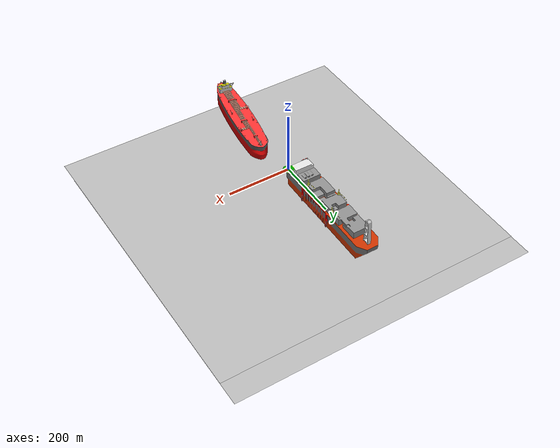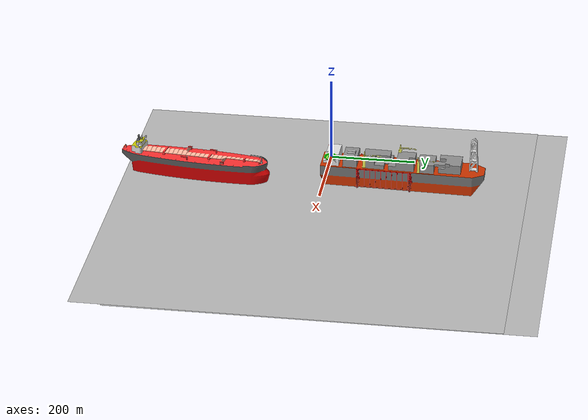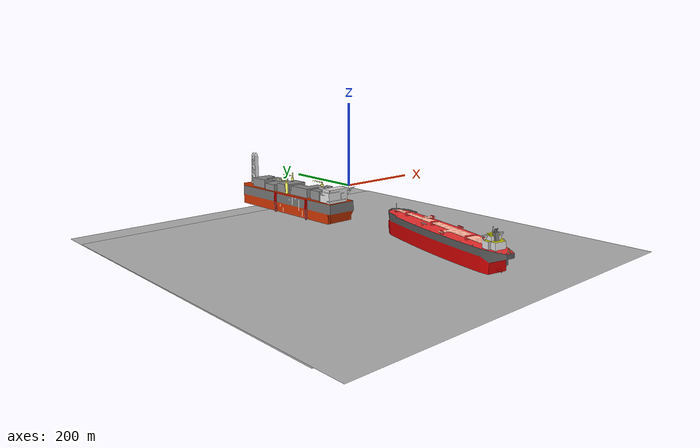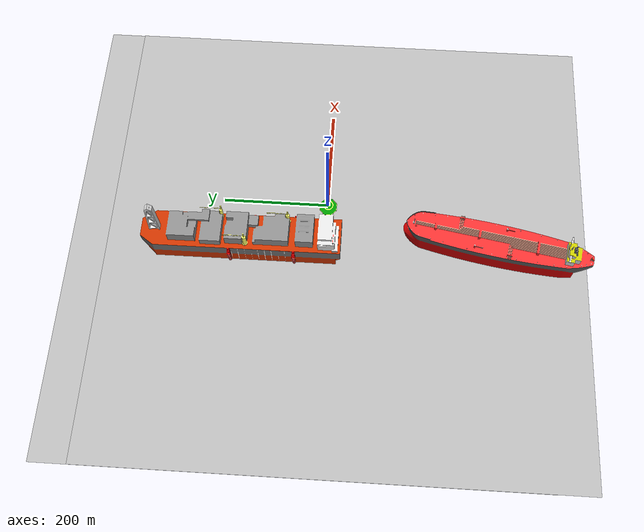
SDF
<sdf version="1.5">
 <world name="default">
  <include><uri>model://sun</uri></include>
  <model name="Placa QR">
   <static>true</static>
   <link name="link">
    <collision name="placaqr">
     <pose>-4.342632 -300.583344 -36.036732 1.13447 0.026008 1.558639</pose>
     <geometry><mesh><uri>model://placaqr/meshes/placaQR.dae</uri></mesh></geometry>
    </collision>
    <visual name="placaqr2">
     <pose>-4.342632 -300.583344 -36.036732 1.13447 0.026008 1.558639</pose>
     <geometry><mesh><uri>model://placaqr/meshes/placaQR.dae</uri></mesh></geometry>
    </visual>
   </link>
  </model>
  <model name="Solo Marinho">
   <static>true</static>
   <link name="link">
    <collision name="solo_marinho">
     <pose>0 0 -154.266701 3.14 0 0</pose>
     <geometry><mesh><uri>model://solo_marinho/meshes/areia3.dae</uri></mesh></geometry>
    </collision>
    <visual name="solo_marinho">
     <pose>0 0 -154.266701 3.14 0 0</pose>
     <geometry><mesh><uri>model://solo_marinho/meshes/areia3.dae</uri></mesh></geometry>
    </visual>
    <visual name="solo_marinho2">
     <pose>0 0 -156.266701 0 0 0</pose>
     <geometry><mesh><uri>model://solo_marinho/meshes/areia3.dae</uri></mesh></geometry>
    </visual>
   </link>
  </model>
  <model name="replicante">
   <link name="link">
    <pose>-13.572979 190.714013 -68.596881 -0.015928 0.000156 0.000501</pose>
    <inertial>
     <mass>1000000</mass>
     <inertia>
      <ixx>17000000000</ixx>
      <ixy>0</ixy>
      <ixz>0</ixz>
      <iyy>17000000000</iyy>
      <iyz>0</iyz>
      <izz>17000000000</izz>
     </inertia>
    </inertial>
    <collision name="collision">
     <geometry><mesh><uri>model://replicante/meshes/replicante9.dae</uri></mesh></geometry>
    </collision>
    <visual name="visual">
     <geometry><mesh><uri>model://replicante/meshes/replicante9.dae</uri></mesh></geometry>
    </visual>
   </link>
  </model>
  <model name="aliviador">
   <link name="link">
    <pose>-34.4309 -330.543 -63.324482 0 -0 2.94184</pose>
    <inertial>
     <mass>1000000</mass>
     <inertia>
      <ixx>17000000000</ixx>
      <ixy>0</ixy>
      <ixz>0</ixz>
      <iyy>17000000000</iyy>
      <iyz>0</iyz>
      <izz>17000000000</izz>
     </inertia>
    </inertial>
    <collision name="collision">
     <geometry><mesh><uri>model://aliviador/meshes/aliviador2.dae</uri></mesh></geometry>
    </collision>
    <visual name="visual">
     <geometry><mesh><uri>model://aliviador/meshes/aliviador2.dae</uri></mesh></geometry>
    </visual>
   </link>
  </model>
  <scene>
   <ambient>0.01 0.01 0.01 1</ambient>
   <sky><clouds><speed>12</speed></clouds></sky>
   <shadows>1</shadows>
   <background>0.7 0.7 0.7 1</background>
  </scene>
  <light name="sun1" type="directional">
   <pose>50 0 150 0 -0 0</pose>
   <diffuse>1 1 1 1</diffuse>
   <specular>0.1 0.1 0.1 1</specular>
   <direction>0.3 0.3 -1</direction>
   <cast_shadows>0</cast_shadows>
  </light>
  <light name="sun_diffuse" type="directional">
   <pose>-50 0 -150 0 -0 0</pose>
   <diffuse>0.6 0.6 0.6 1</diffuse>
   <specular>0 0 0 1</specular>
   <direction>-0.3 -0.3 -1</direction>
   <cast_shadows>0</cast_shadows>
  </light>
  <light name="sun2" type="directional">
   <pose>0 50 0 0 -0 0</pose>
   <diffuse>1 1 1 1</diffuse>
   <specular>0.1 0.1 0.1 1</specular>
   <direction>-0.3 0.3 -1</direction>
   <cast_shadows>0</cast_shadows>
  </light>
  <light name="sun3" type="directional">
   <pose>0 -50 0 0 -0 0</pose>
   <diffuse>1 1 1 1</diffuse>
   <specular>0.1 0.1 0.1 1</specular>
   <direction>0.3 -0.3 1</direction>
   <cast_shadows>0</cast_shadows>
  </light>
  <model name="world_ned">
   <static>1</static>
   <link name="world_ned">
    <gravity>0</gravity>
    <pose>0 0 0 -3.14159 -0 1.5708</pose>
    <visual name="N_visual">
     <pose>0.25 0 0 1.5708 -0 1.5708</pose>
     <geometry><cylinder><radius>0.01</radius><length>0.5</length></cylinder></geometry>
     <material>
      <script><uri>file://media/materials/scripts/gazebo.material</uri><name>Gazebo/Red</name></script>
     </material>
    </visual>
    <visual name="E_visual">
     <pose>0 0.25 0 1.5708 -0 0</pose>
     <geometry><cylinder><radius>0.01</radius><length>0.5</length></cylinder></geometry>
     <material>
      <script><uri>file://media/materials/scripts/gazebo.material</uri><name>Gazebo/Green</name></script>
     </material>
    </visual>
    <visual name="D_visual">
     <pose>0 0 0.25 0 -0 0</pose>
     <geometry><cylinder><radius>0.01</radius><length>0.5</length></cylinder></geometry>
     <material>
      <script><uri>file://media/materials/scripts/gazebo.material</uri><name>Gazebo/Blue</name></script>
     </material>
    </visual>
   </link>
  </model>
  <physics name="default_physics" default="0" type="ode">
   <gravity>0 0 -9.8066</gravity>
   <ode>
    <solver>
     <type>quick</type>
     <iters>50</iters>
     <sor>1.0</sor>
     <use_dynamic_moi_rescaling>0</use_dynamic_moi_rescaling>
    </solver>
    <constraints>
     <cfm>0</cfm>
     <erp>0.2</erp>
     <contact_max_correcting_vel>100</contact_max_correcting_vel>
     <contact_surface_layer>0.001</contact_surface_layer>
    </constraints>
   </ode>
   <max_step_size>0.004</max_step_size>
   <real_time_factor>1</real_time_factor>
   <real_time_update_rate>250</real_time_update_rate>
   <magnetic_field>6.0e-6 2.3e-5 -4.2e-5</magnetic_field>
  </physics>
 </world>
</sdf>
